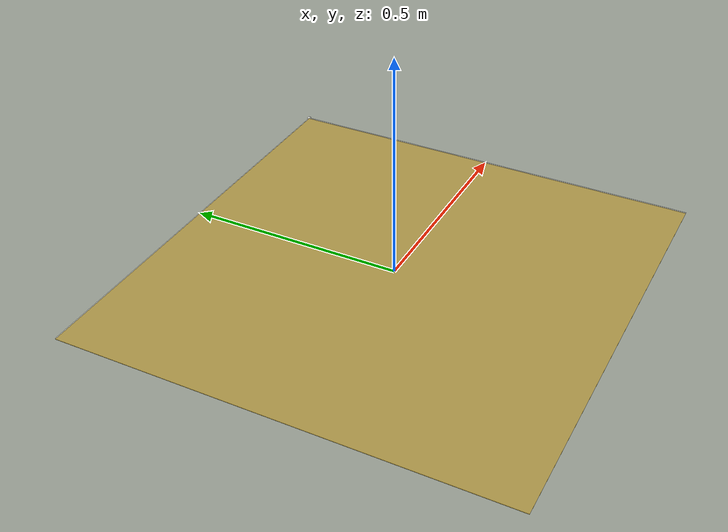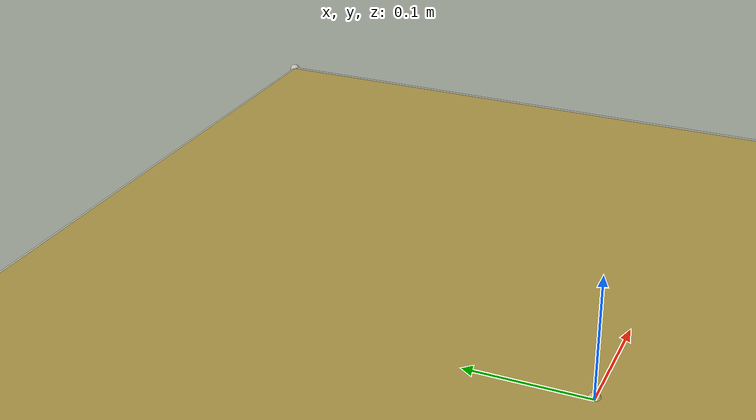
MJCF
<mujoco model="target_zone">
  <default>
    <default class="visual">
      <geom group="1" type="mesh" contype="0" conaffinity="0" density="100"/>
    </default>
    <default class="collision">
      <geom group="0" type="mesh" density="100" solimp="0.95 0.98 0.001" solref="0.004 1" rgba="1 1 1 0.25"/>
    </default>
  </default>
  <asset>
    <texture type="2d" name="Target_Zone" file="textures/Target_Zone.png"/>
    <material name="Target_Zone" texture="Target_Zone" specular="0.5" shininess="0.25" rgba="0.8 0.67 0.1 1.0"/>
  </asset>
  <worldbody>
    <body>
      <body name="object">
        <geom material="Target_Zone" type="plane" size="0.5 0.5 0.001" pos="0 0 0.001" class="visual"/>
        <geom type="box" size="0.5 0.5 0.001" pos="0 0 0.001" class="collision"/>
      </body>
      <site name="bottom_site" pos="0 0 0" rgba="1 1 1 0.5" size="0.005"/>
      <site name="top_site" pos="0 0 0.001" rgba="1 1 1 0.5" size="0.005"/>
      <site name="horizontal_radius_site" pos="0.5 0.5 0" rgba="1 1 1 0.5" size="0.005"/>
    </body>
  </worldbody>
</mujoco>
